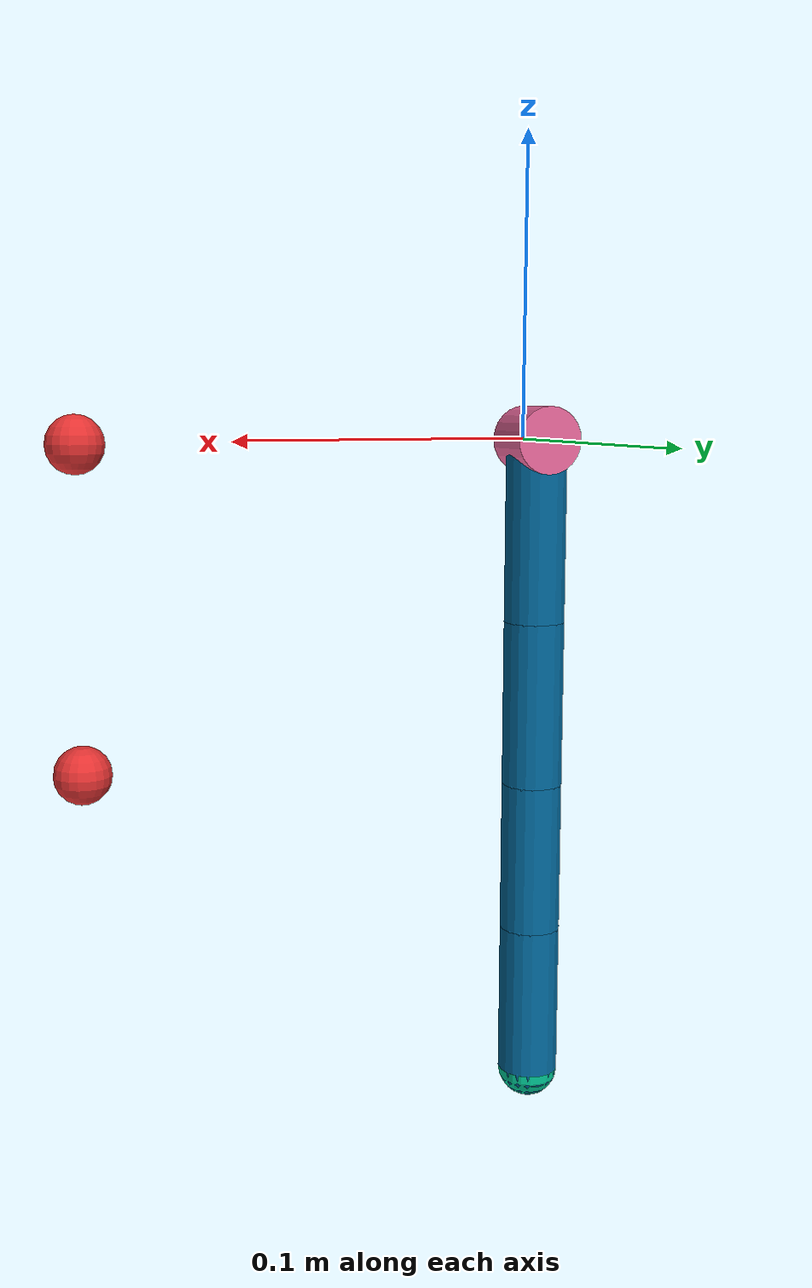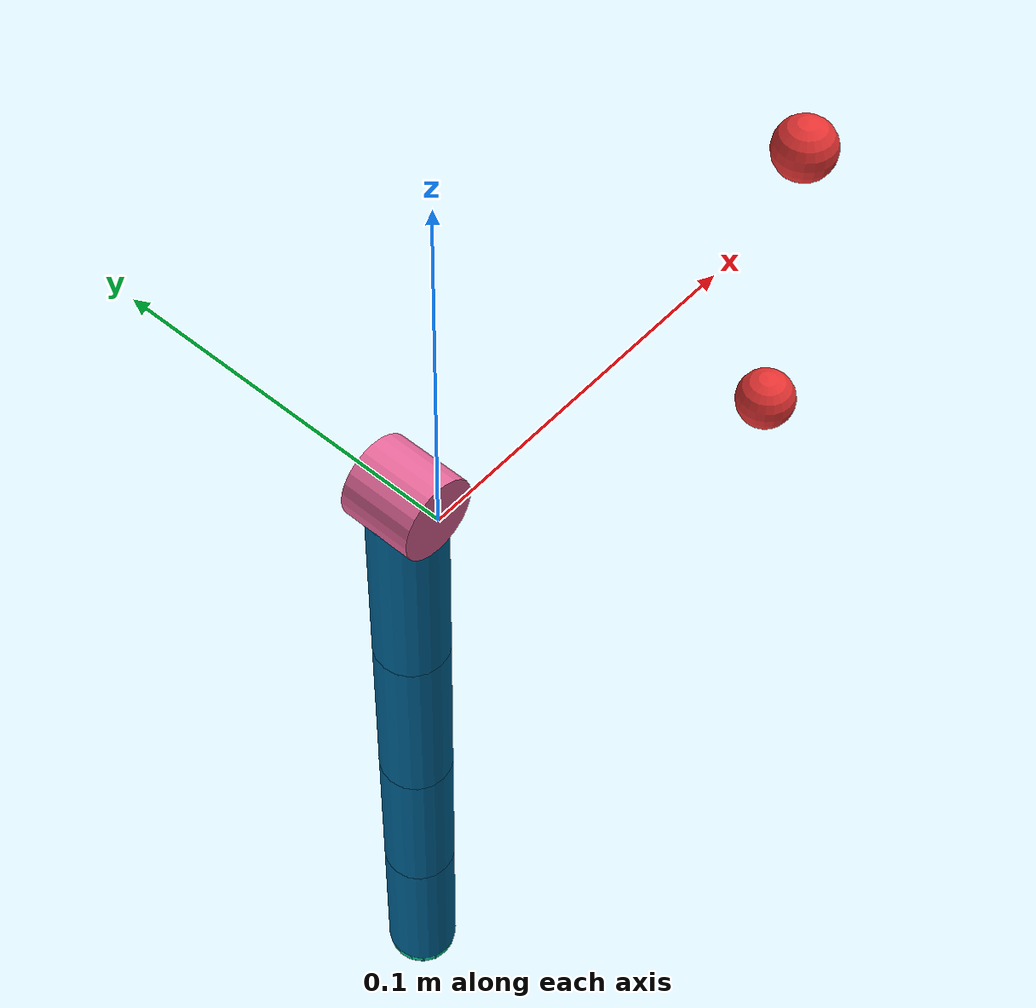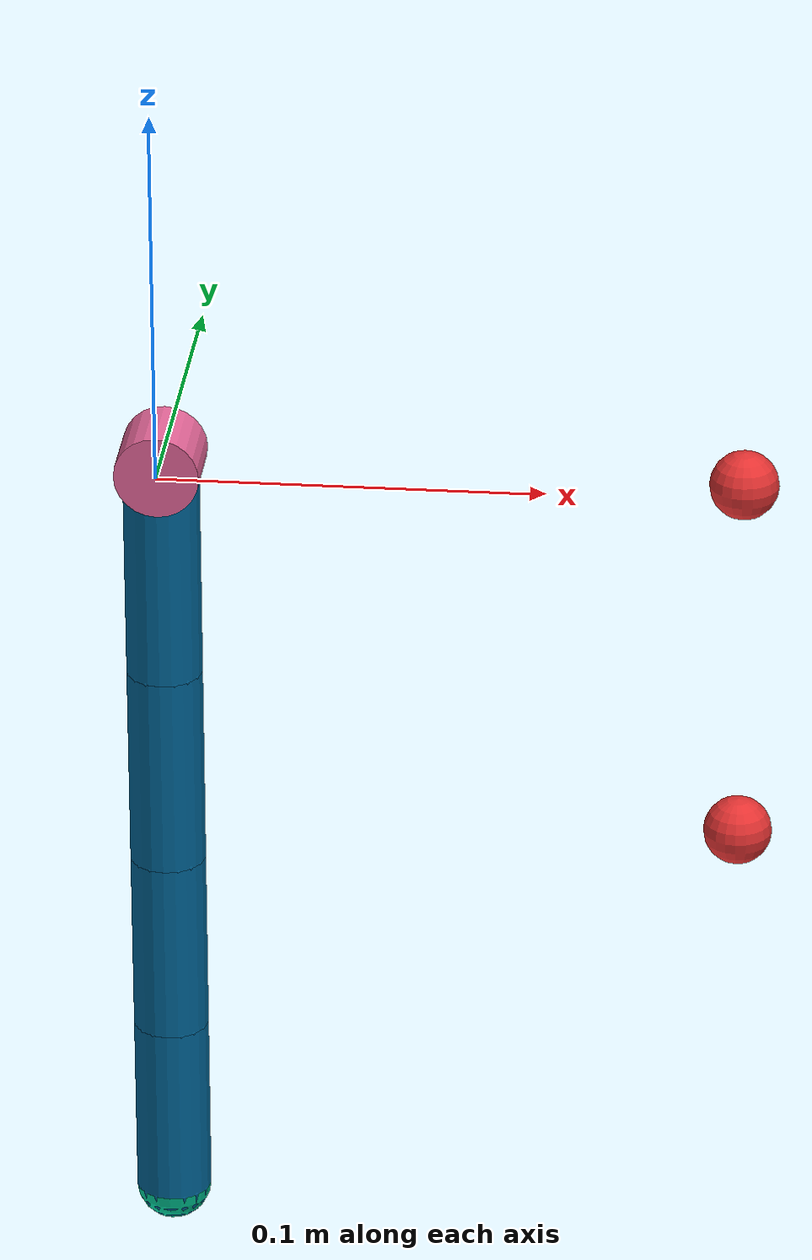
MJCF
<mujoco model="verticalArm">
	<compiler angle="radian" inertiafromgeom="auto"/>
	<default>
		<joint armature="1" damping="1" limited="true"/>
		<geom contype="0" friction="1 0.1 0.1" rgba="0.7 0.7 0 1"/>
	</default>
	<option gravity="0 0 0" integrator="RK4" timestep="0.01"/>
	<worldbody>

		<!-- Arm -->
		<geom conaffinity="0" contype="0" fromto="0 0 0 0 0.02 0" name="root" rgba="0.9 0.4 0.6 1" size=".011" type="cylinder"/>
		<body name="shoulder" pos="0 0.01 -.005">
			<geom fromto="0 0 0 0 0 -0.055" name="shoulder" rgba="0.0 0.4 0.6 1" size=".01" type="capsule" mass="1"/>
			<joint axis="0 1 0" limited="false" range="-2 0.5" name="shoulder" pos="0 0 0" type="hinge" damping="1"  stiffness="0"/>
			<site name="shoulder" pos="0 0 0" size=".003 .003 .003" type="ellipsoid" rgba="0.3 0.2 0.1 0.3"/>
			<body name="shoulder2" pos="0 0 -.055">
				<geom fromto="0 0 0 0 0 -0.055" name="shoulder2" rgba="0.0 0.4 0.6 1" size=".01" type="capsule" mass="1"/>
				<joint axis="0 1 0" limited="true" range="-2 0.5" name="shoulder2" pos="0 0 0" type="hinge" damping="1"  stiffness="0"/>
				<site name="shoulder2" pos="0 0 0" size=".003 .003 .003" type="ellipsoid" rgba="0.3 0.2 0.1 0.3"/>
				<body name="elbow" pos="0 0 -0.055">
					<joint axis="0 1 0" limited="true" name="elbow" pos="0 0 0" range="-2. 0" type="hinge" damping="0."  stiffness="0"/>#-2.8
					<site name="elbow" pos="0 0 0" size=".003 .003 .003" type="ellipsoid" rgba="0.3 0.2 0.1 0.3"/>
					<geom fromto="0 0 0 0 0 -0.05" name="elbow" rgba="0.0 0.4 0.6 1" size=".01" type="capsule" mass="0.5"/>#5.75
					<body name="elbow2" pos="0 0 -0.05">
						<joint axis="0 1 0" limited="true" name="elbow2" pos="0 0 0" range="-2. 0" type="hinge" damping="0."  stiffness="0"/>#-2.8
						<site name="elbow2" pos="0 0 0" size=".003 .003 .003" type="ellipsoid" rgba="0.3 0.2 0.1 0.3"/>
						<geom fromto="0 0 0 0 0 -0.05" name="elbow2" rgba="0.0 0.4 0.6 1" size=".01" type="capsule" mass="0.5"/>#5.75
						<body name="fingertip" pos="0 0 -0.05">
							<geom contype="0" name="fingertip" pos="0 0 0" rgba="0.0 0.8 0.6 1" size=".01" type="sphere"  mass="0.33"/>#2
						</body>
					</body>
				</body>
			</body>
		</body>

		<!-- Target -->

		<body name="target" pos=".15 0.01 -.1">
			<site  name="target" pos="0 0 0" rgba="0.9 0.2 0.2 1" size=".009 .009 .009" type="sphere" />

		</body>
		<body name="target1" pos=".15 0.01 0.">
			<site  name="target1" pos="0 0 0" rgba="0.9 0.2 0.2 1" size=".009 .009 .009" type="sphere" />
		</body>

	</worldbody>
	<actuator>
		<motor ctrllimited="true" ctrlrange="-1.0 1.0" gear="30.0" joint="shoulder"/>#50.0 20
		<motor ctrllimited="true" ctrlrange="-1.0 1.0" gear="30.0" joint="shoulder2"/>#50.0 20
		<motor ctrllimited="true" ctrlrange="-1.0 1.0" gear="25.0" joint="elbow"/>#40.0 20
		<motor ctrllimited="true" ctrlrange="-1.0 1.0" gear="25.0" joint="elbow2"/>#40.0 20
	</actuator>
	<sensor>
        <torque site="shoulder" name="torque_sensor0"/>
		<torque site="shoulder2" name="torque_sensor1"/>
		<torque site="elbow" name="torque_sensor2"/>
		<torque site="elbow2" name="torque_sensor3"/>
  </sensor>

</mujoco>
